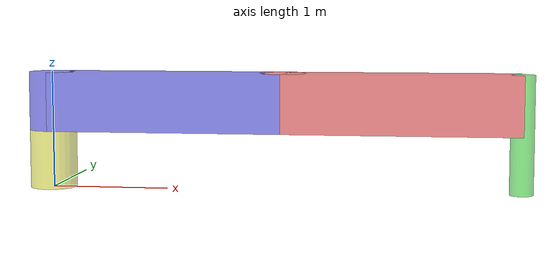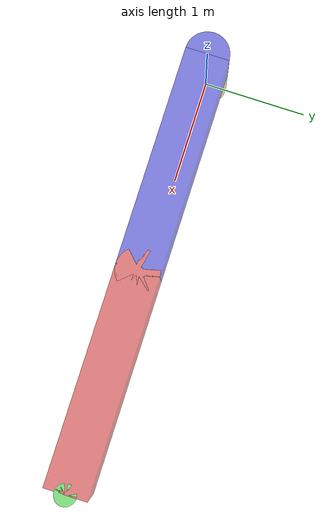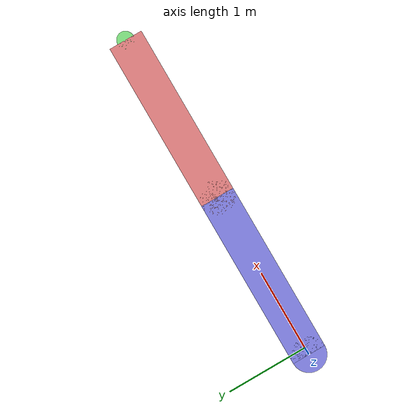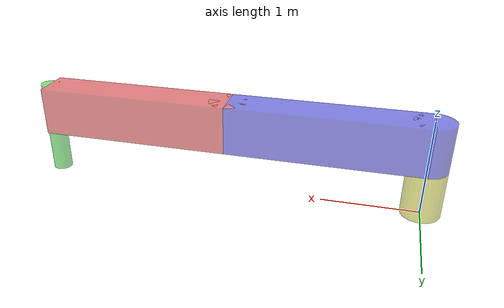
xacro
<?xml version="1.0"?>

<robot name="myscara" xmlns:xacro="http://ros.org/wiki/xacro">

    <!--  Variables in xacro -->
    <xacro:property name="height" value="0.5" />

<!--  Define materials - Colors -->
 <material name="blue">
    <color rgba="0 0 0.8 0.5"/>
  </material>

  <material name="yellow">
    <color rgba="0.8 0.8 0 0.5"/>
  </material>

    <material name="red">
    <color rgba="0.8 0 0 0.5"/>
  </material>

    <material name="green">
    <color rgba="0 0.8 0 0.5"/>
  </material>

<!--  Base link-->
  <link name="base_link">
    <visual>
      <origin xyz="0 0 ${height/2}" />
      <geometry>
        <cylinder length="${height}" radius="0.2"/>
      </geometry>
      <material name="yellow"/>
    </visual>
  </link>

<!--  Link 1-->
  <link name="link1">
    <visual>
      <origin xyz="1 0 -0.25" />
      <geometry>
        <box size="2.0 0.4 0.5"/>
      </geometry>
      <material name="blue"/>
    </visual>
  </link>

<!--  Just  to draw the cylinder part of link1-->
  <link name="link1_visual">
    <visual>
      <origin xyz="0 0 0" />
      <geometry>
        <cylinder length="0.5" radius="0.2"/>
      </geometry>
      <material name="blue"/>
    </visual>
  </link>

  <!--  Junta link1 <-> link1_ visual-->
  <joint name="link1_to_link1_visual" type="fixed">
    <origin xyz="0 0 -0.25"/>
    <parent link="link1"/>
    <child link="link1_visual"/>
  </joint>

<!--  Junta base_link <-> link1-->
  <joint name="base_link_to_link1" type="continuous">
    <axis xyz="0 0 1"/>
    <origin xyz="0 0 1"/>
    <parent link="base_link"/>
    <child link="link1"/>
  </joint>

  <!--  Link 2-->
  <link name="link2">
    <visual>
      <origin xyz="1 0 -0.25" />
      <geometry>
        <box size="2.0 0.4 0.5"/>
      </geometry>
      <material name="red"/>
    </visual>
  </link>

<!--  Just  to draw the cylinder part of link1-->
  <link name="link2_visual">
    <visual>
      <origin xyz="0 0 0" />
      <geometry>
        <cylinder length="0.5" radius="0.2"/>
      </geometry>
      <material name="red" />
    </visual>
  </link>

      <!--  Junta link2 <-> link2_ visual-->
  <joint name="link2_to_link2_visual" type="fixed">
    <origin xyz="0 0 -0.25"/>
    <parent link="link2"/>
    <child link="link2_visual"/>
  </joint>

    <!--  Junta link1 <-> link2-->
  <joint name="link1_to_link2" type="continuous">
    <axis xyz="0 0 1"/>
    <origin xyz="2 0 0"/>
    <parent link="link1"/>
    <child link="link2"/>
  </joint>

      <!--  ee_link-->
  <link name="ee_link">
    <visual>
      <origin xyz="0 0 -0.5" />
      <geometry>
        <cylinder length="1" radius="0.1"/>
      </geometry>
      <material name="green"/>
    </visual>
  </link>

    <!--  Junta ee_link <-> link2-->
  <joint name="link2_to_ee_link" type="prismatic">
      <axis xyz="0 0 1"/>
    <origin xyz="2 0 0"/>
    <parent link="link2"/>
    <child link="ee_link"/>
      <limit effort="1000.0" lower="1" upper="-1" velocity="0.5"/>

  </joint>

</robot>
